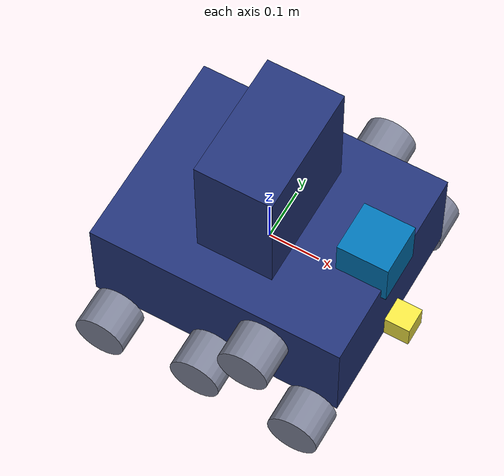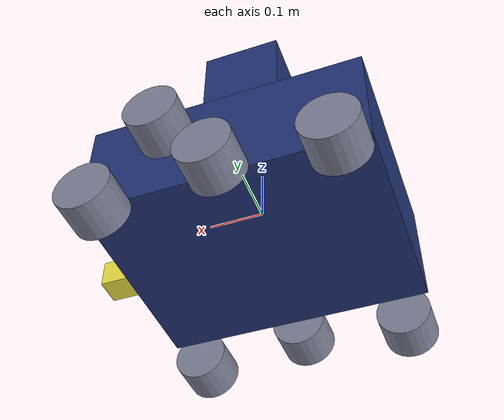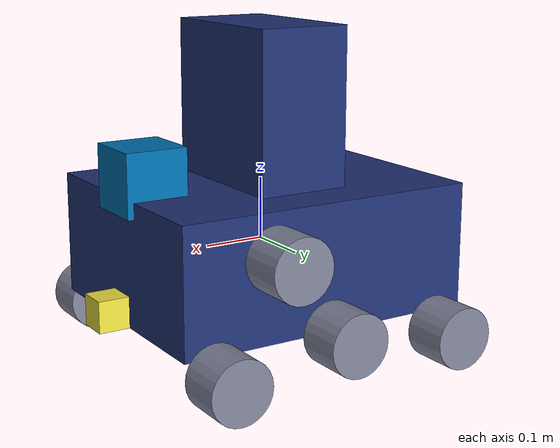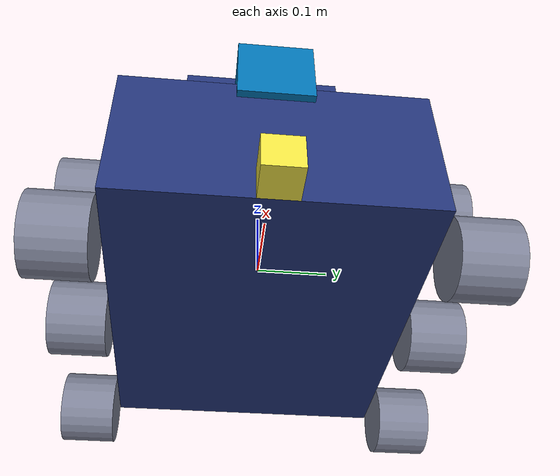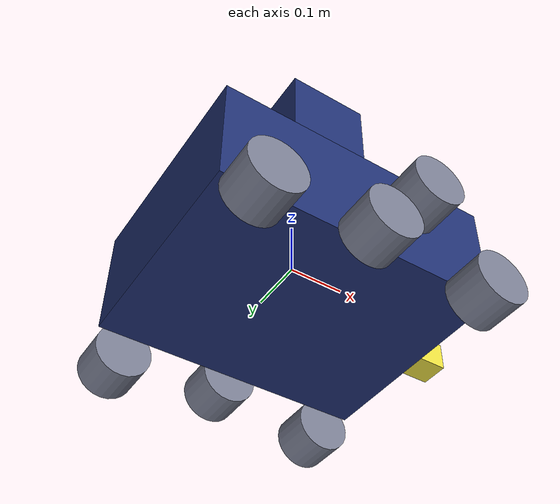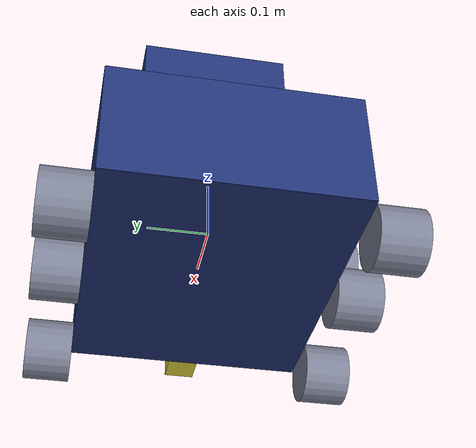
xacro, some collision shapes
<?xml version='1.0'?>

<!-- Inspired by RX-75-4 Guntank -->

<robot name="my_robot" xmlns:xacro="http://www.ros.org/wiki/xacro">
  <xacro:include filename="$(find my_robot)/urdf/my_robot.gazebo" />

  <xacro:macro name="material_GuntankBaseBlue">
    <visual>
      <material>
        <ambient>0.133 0.2 0.466 1</ambient>
        <diffuse>0.133 0.2 0.466 1</diffuse>
        <specular>0.1 0.1 0.1 1</specular>
        <emissive>0 0 0 0</emissive>
      </material>
    </visual>
  </xacro:macro>

  <material name="Guntank Base Blue">
    <color rgba="0.133 0.2 0.466 1"/>
  </material>

  <xacro:macro name="material_GuntankTrackGrey">
    <visual>
      <material>
        <ambient>0.490 0.509 0.592 1</ambient>
        <diffuse>0.490 0.509 0.592 1</diffuse>
        <specular>0.1 0.1 0.1 1</specular>
        <emissive>0 0 0 0</emissive>
      </material>
    </visual>
  </xacro:macro>

  <material name="Guntank Track Grey">
    <color rgba="0.490 0.509 0.592 1"/>
  </material>

  <link name="robot_footprint"></link>

  <joint name="robot_footprint_joint" type="fixed">
    <origin xyz="0 0 0" rpy="0 0 0" />
    <parent link="robot_footprint"/>
    <child link="chassis" />
  </joint>

  <link name='chassis'>
    <inertial>
      <mass value="15.0"/>
      <origin xyz="0.0 0 0" rpy=" 0 0 0"/>
      <inertia
          ixx="0.1" ixy="0" ixz="0"
          iyy="0.1" iyz="0"
          izz="0.1"
      />
    </inertial>

    <visual name='chassis_visual'>
      <origin xyz="0 0 0" rpy=" 0 0 0"/>
      <geometry>
        <box size="0.5 0.4 0.2"/>
      </geometry>
      <material name="Guntank Base Blue"/>
    </visual>

    <collision name='collision'>
      <origin xyz="0 0 0" rpy=" 0 0 0"/>
      <geometry>
        <box size="0.5 0.4 0.2"/>
      </geometry>
    </collision>
  </link>

  <gazebo reference="chassis">
    <xacro:material_GuntankBaseBlue />
  </gazebo>

  <link name='body'>
    <inertial>
      <mass value="5.0"/>
      <origin xyz="0.0 0 0" rpy=" 0 0 0"/>
      <inertia
          ixx="0.1" ixy="0" ixz="0"
          iyy="0.1" iyz="0"
          izz="0.1"
      />
    </inertial>

    <visual name='body_visual'>
      <origin xyz="0 0 0" rpy=" 0 0 0"/>
      <geometry>
        <box size="0.15 0.25 0.25"/>
      </geometry>
      <material name="Guntank Base Blue"/>
    </visual>

    <collision name='collision'>
      <origin xyz="0 0 0" rpy=" 0 0 0"/>
      <geometry>
        <box size="0.15 0.25 0.25"/>
      </geometry>
    </collision>
  </link>

  <gazebo reference="body">
    <xacro:material_GuntankBaseBlue />
  </gazebo>

  <!-- Fixed joint for now -->
  <joint type="fixed" name="body_hinge">
    <origin xyz="0 0 0.225" rpy="0 0 0"/>
    <child link="body"/>
    <parent link="chassis"/>
  </joint>

  <link name='left_wheel'>
    <inertial>
      <mass value="5.0"/>
      <origin xyz="0 0 0" rpy="0 1.5707 1.5707"/>
      <inertia
          ixx="0.1" ixy="0" ixz="0"
          iyy="0.1" iyz="0"
          izz="0.1"
      />
    </inertial>

    <visual name='left_wheel_visual'>
      <origin xyz="0 0 0" rpy="0 1.5707 1.5707"/>
      <geometry>
        <cylinder radius="0.05" length="0.075"/>
      </geometry>
      <material name="Guntank Track Grey"/>
    </visual>

    <collision name='collision'>
      <origin xyz="0 0 0" rpy="0 1.5707 1.5707"/>
      <geometry>
        <cylinder radius="0.05" length="0.075"/>
      </geometry>
    </collision>
  </link>

  <gazebo reference="left_wheel">
    <xacro:material_GuntankTrackGrey />
  </gazebo>

  <joint type="continuous" name="left_wheel_hinge">
    <origin xyz="0 0.2375 -0.1" rpy="0 0 0"/>
    <child link="left_wheel"/>
    <parent link="chassis"/>
    <axis xyz="0 1 0" rpy="0 0 0"/>
    <limit effort="10000" velocity="1000"/>
    <dynamics damping="0" friction="0"/>
  </joint>

  <link name='left_back_road_wheel'>
    <inertial>
      <mass value="5.0"/>
      <origin xyz="0 0 0" rpy="0 1.5707 1.5707"/>
      <inertia
          ixx="0.1" ixy="0" ixz="0"
          iyy="0.1" iyz="0"
          izz="0.1"
      />
    </inertial>

    <visual name='left_back_road_wheel_visual'>
      <origin xyz="0 0 0" rpy="0 1.5707 1.5707"/>
      <geometry>
        <cylinder radius="0.05" length="0.075"/>
      </geometry>
      <material name="Guntank Track Grey"/>
    </visual>

    <collision name='collision'>
      <origin xyz="0 0 0" rpy="0 1.5707 1.5707"/>
      <geometry>
        <cylinder radius="0.05" length="0.075"/>
      </geometry>
    </collision>
  </link>

  <gazebo reference="left_back_road_wheel">
    <xacro:material_GuntankTrackGrey />
  </gazebo>

  <joint type="continuous" name="left_back_road_wheel_hinge">
    <origin xyz="-0.2 0.2375 -0.128" rpy="0 0 0"/>
    <child link="left_back_road_wheel"/>
    <parent link="chassis"/>
    <axis xyz="0 1 0" rpy="0 0 0"/>
    <limit effort="10000" velocity="1000"/>
    <dynamics damping="1.0" friction="1.0"/>
  </joint>

  <link name='left_front_road_wheel'>
    <inertial>
      <mass value="5.0"/>
      <origin xyz="0 0 0" rpy="0 1.5707 1.5707"/>
      <inertia
          ixx="0.1" ixy="0" ixz="0"
          iyy="0.1" iyz="0"
          izz="0.1"
      />
    </inertial>

    <visual name='left_front_road_wheel_visual'>
      <origin xyz="0 0 0" rpy="0 1.5707 1.5707"/>
      <geometry>
        <cylinder radius="0.05" length="0.075"/>
      </geometry>
      <material name="Guntank Track Grey"/>
    </visual>

    <collision name='collision'>
      <origin xyz="0 0 0" rpy="0 1.5707 1.5707"/>
      <geometry>
        <cylinder radius="0.05" length="0.075"/>
      </geometry>
    </collision>
  </link>

  <gazebo reference="left_front_road_wheel">
    <xacro:material_GuntankTrackGrey />
  </gazebo>

  <joint type="continuous" name="left_front_road_wheel_hinge">
    <origin xyz="0.2 0.2375 -0.128" rpy="0 0 0"/>
    <child link="left_front_road_wheel"/>
    <parent link="chassis"/>
    <axis xyz="0 1 0" rpy="0 0 0"/>
    <limit effort="10000" velocity="1000"/>
    <dynamics damping="1.0" friction="1.0"/>
  </joint>

  <link name='left_return_roller'>
    <inertial>
      <mass value="5.0"/>
      <origin xyz="0 0 0" rpy="0 1.5707 1.5707"/>
      <inertia
          ixx="0.1" ixy="0" ixz="0"
          iyy="0.1" iyz="0"
          izz="0.1"
      />
    </inertial>

    <visual name='left_return_roller_visual'>
      <origin xyz="0 0 0" rpy="0 1.5707 1.5707"/>
      <geometry>
        <cylinder radius="0.05" length="0.075"/>
      </geometry>
      <material name="Guntank Track Grey"/>
    </visual>

    <collision name='collision'>
      <origin xyz="0 0 0" rpy="0 1.5707 1.5707"/>
      <geometry>
        <cylinder radius="0.05" length="0.075"/>
      </geometry>
    </collision>
  </link>

  <gazebo reference="left_return_roller">
    <xacro:material_GuntankTrackGrey />
  </gazebo>

  <joint type="continuous" name="left_return_roller_hinge">
    <origin xyz="0.1 0.2375 0.03" rpy="0 0 0"/>
    <child link="left_return_roller"/>
    <parent link="chassis"/>
    <axis xyz="0 1 0" rpy="0 0 0"/>
    <limit effort="10000" velocity="1000"/>
    <dynamics damping="0.0" friction="0.0"/>
  </joint>

  <link name='right_wheel'>
    <inertial>
      <mass value="5.0"/>
      <origin xyz="0 0 0" rpy="0 1.5707 1.5707"/>
      <inertia
          ixx="0.1" ixy="0" ixz="0"
          iyy="0.1" iyz="0"
          izz="0.1"
      />
    </inertial>

    <visual name='right_wheel_visual'>
      <origin xyz="0 0 0" rpy=" 0 1.5707 1.5707"/>
      <geometry>
        <cylinder radius="0.05" length="0.075"/>
      </geometry>
      <material name="Guntank Track Grey"/>
    </visual>

    <collision name='collision'>
      <origin xyz="0 0 0" rpy=" 0 1.5707 1.5707"/>
      <geometry>
        <cylinder radius="0.05" length="0.075"/>
      </geometry>
    </collision>
  </link>

  <gazebo reference="right_wheel">
    <xacro:material_GuntankTrackGrey />
  </gazebo>

  <joint type="continuous" name="right_wheel_hinge">
    <origin xyz="0 -0.2375 -0.1" rpy="0 0 0"/>
    <child link="right_wheel"/>
    <parent link="chassis"/>
    <axis xyz="0 1 0" rpy="0 0 0"/>
    <limit effort="10000" velocity="1000"/>
    <dynamics damping="0" friction="0"/>
  </joint>

  <link name='right_back_road_wheel'>
    <inertial>
      <mass value="5.0"/>
      <origin xyz="0 0 0" rpy="0 1.5707 1.5707"/>
      <inertia
          ixx="0.1" ixy="0" ixz="0"
          iyy="0.1" iyz="0"
          izz="0.1"
      />
    </inertial>

    <visual name='right_back_road_wheel_visual'>
      <origin xyz="0 0 0" rpy="0 1.5707 1.5707"/>
      <geometry>
        <cylinder radius="0.05" length="0.075"/>
      </geometry>
      <material name="Guntank Track Grey"/>
    </visual>

    <collision name='collision'>
      <origin xyz="0 0 0" rpy="0 1.5707 1.5707"/>
      <geometry>
        <cylinder radius="0.05" length="0.075"/>
      </geometry>
    </collision>
  </link>

  <gazebo reference="right_back_road_wheel">
    <xacro:material_GuntankTrackGrey />
  </gazebo>

  <joint type="continuous" name="right_back_road_wheel_hinge">
    <origin xyz="-0.2 -0.2375 -0.128" rpy="0 0 0"/>
    <child link="right_back_road_wheel"/>
    <parent link="chassis"/>
    <axis xyz="0 1 0" rpy="0 0 0"/>
    <limit effort="10000" velocity="1000"/>
    <dynamics damping="1.0" friction="1.0"/>
  </joint>

  <link name='right_front_road_wheel'>
    <inertial>
      <mass value="5.0"/>
      <origin xyz="0 0 0" rpy="0 1.5707 1.5707"/>
      <inertia
          ixx="0.1" ixy="0" ixz="0"
          iyy="0.1" iyz="0"
          izz="0.1"
      />
    </inertial>

    <visual name='right_front_road_wheel_visual'>
      <origin xyz="0 0 0" rpy="0 1.5707 1.5707"/>
      <geometry>
        <cylinder radius="0.05" length="0.075"/>
      </geometry>
      <material name="Guntank Track Grey"/>
    </visual>

    <collision name='collision'>
      <origin xyz="0 0 0" rpy="0 1.5707 1.5707"/>
      <geometry>
        <cylinder radius="0.05" length="0.075"/>
      </geometry>
    </collision>
  </link>

  <gazebo reference="right_front_road_wheel">
    <xacro:material_GuntankTrackGrey />
  </gazebo>

  <joint type="continuous" name="right_front_road_wheel_hinge">
    <origin xyz="0.2 -0.2375 -0.128" rpy="0 0 0"/>
    <child link="right_front_road_wheel"/>
    <parent link="chassis"/>
    <axis xyz="0 1 0" rpy="0 0 0"/>
    <limit effort="10000" velocity="1000"/>
    <dynamics damping="1.0" friction="1.0"/>
  </joint>

  <link name='right_return_roller'>
    <inertial>
      <mass value="5.0"/>
      <origin xyz="0 0 0" rpy="0 1.5707 1.5707"/>
      <inertia
          ixx="0.1" ixy="0" ixz="0"
          iyy="0.1" iyz="0"
          izz="0.1"
      />
    </inertial>

    <visual name='right_return_roller_visual'>
      <origin xyz="0 0 0" rpy="0 1.5707 1.5707"/>
      <geometry>
        <cylinder radius="0.05" length="0.075"/>
      </geometry>
      <material name="Guntank Track Grey"/>
    </visual>

    <collision name='collision'>
      <origin xyz="0 0 0" rpy="0 1.5707 1.5707"/>
      <geometry>
        <cylinder radius="0.05" length="0.075"/>
      </geometry>
    </collision>
  </link>

  <gazebo reference="right_return_roller">
    <xacro:material_GuntankTrackGrey />
  </gazebo>

  <joint type="continuous" name="right_return_roller_hinge">
    <origin xyz="0.1 -0.2375 0.03" rpy="0 0 0"/>
    <child link="right_return_roller"/>
    <parent link="chassis"/>
    <axis xyz="0 1 0" rpy="0 0 0"/>
    <limit effort="10000" velocity="1000"/>
    <dynamics damping="0.0" friction="0.0"/>
  </joint>

  <link name='camera'>
    <inertial>
      <mass value="0.1"/>
      <origin xyz="0 0 0" rpy=" 0 0 0"/>
      <inertia
          ixx="1e-6" ixy="0" ixz="0"
          iyy="1e-6" iyz="0"
          izz="1e-6"
      />
    </inertial>

    <visual name='camera_visual'>
      <origin xyz="0 0 0" rpy=" 0 0 0"/>
      <geometry>
        <box size="0.05 0.05 0.05"/>
      </geometry>
    </visual>

    <collision name='camera_collision'>
      <origin xyz="0 0 0" rpy=" 0 0 0"/>
      <geometry>
        <box size="0.05 0.05 0.05"/>
      </geometry>
    </collision>
  </link>

  <joint type="fixed" name="camera_joint">
    <origin xyz="0.275 0 -0.075" rpy="0 0 0"/>
    <child link="camera"/>
    <parent link="chassis"/>
    <axis xyz="0 1 0" rpy="0 0 0"/>
  </joint>

  <link name='hokuyo'>
    <inertial>
      <mass value="1e-5"/>
      <origin xyz="0 0 0" rpy=" 0 0 0"/>
      <inertia
          ixx="1e-6" ixy="0" ixz="0"
          iyy="1e-6" iyz="0"
          izz="1e-6"
      />
    </inertial>

    <visual name='hokuyo_visual'>
      <origin xyz="0 0 0" rpy=" 0 0 0"/>
      <geometry>
        <mesh filename="package://my_robot/meshes/hokuyo.dae"/>
      </geometry>
    </visual>

    <collision name='hokuyo_collision'>
      <origin xyz="0 0 0" rpy=" 0 0 0"/>
      <geometry>
        <box size="0.1 0.1 0.1"/>
      </geometry>
    </collision>
  </link>

  <joint type="fixed" name="hokuyo_joint">
    <origin xyz="0.21 0 0.125" rpy="0 0 0"/>
    <child link="hokuyo"/>
    <parent link="chassis"/>
    <axis xyz="0 1 0" rpy="0 0 0"/>
  </joint>

  <link name="camera_link_optical">

  </link>

  <joint name="camera_optical_joint" type="fixed">
    <origin xyz="0.075 0 0.125" rpy="0 0 0"/>
    <parent link="body"/>
    <child link="camera_link_optical"/>
    <axis xyz="0 1 0" rpy="0 0 0"/>
  </joint>
</robot>
